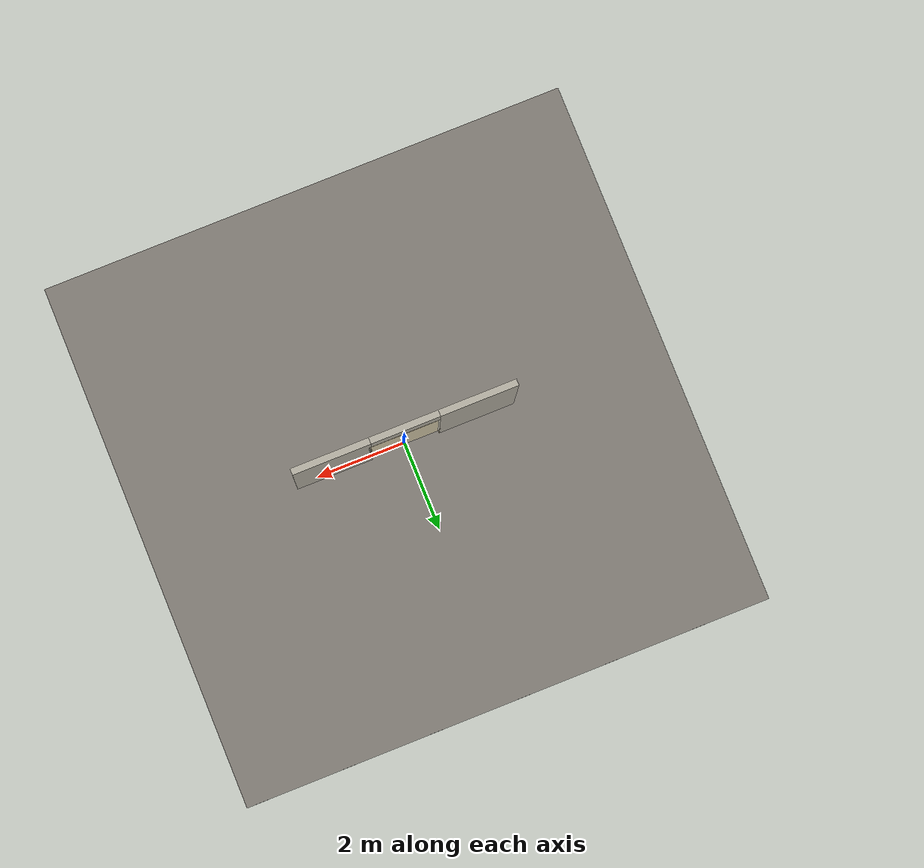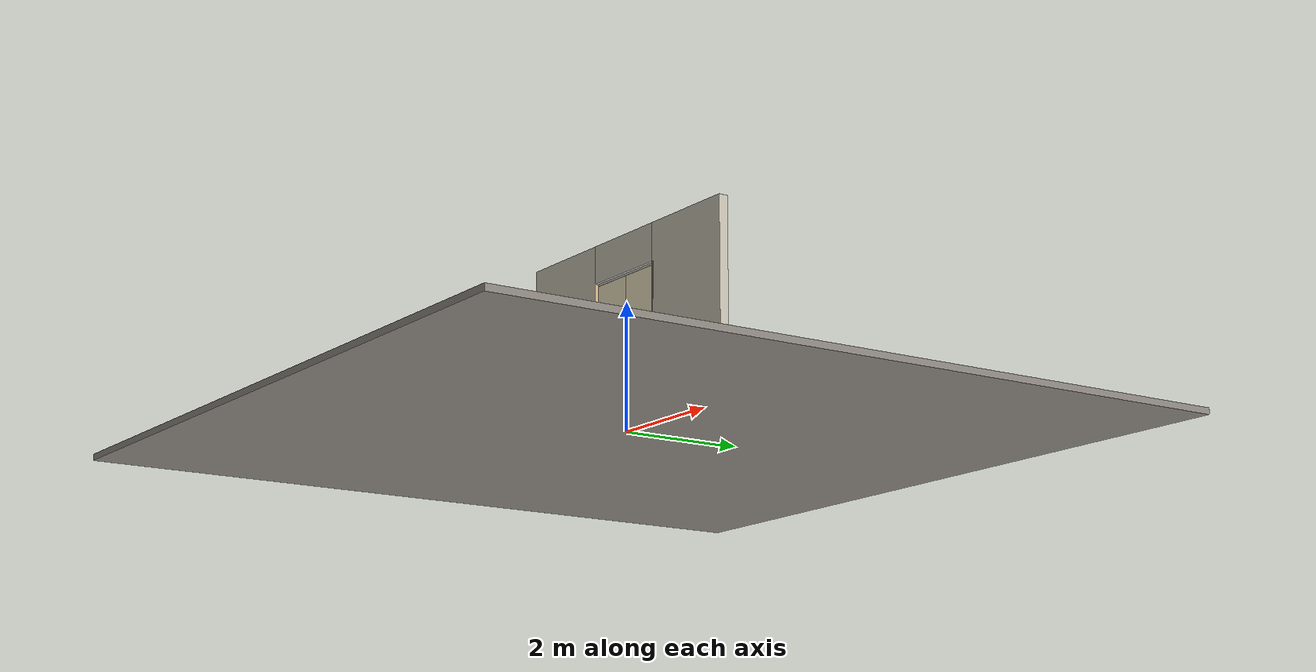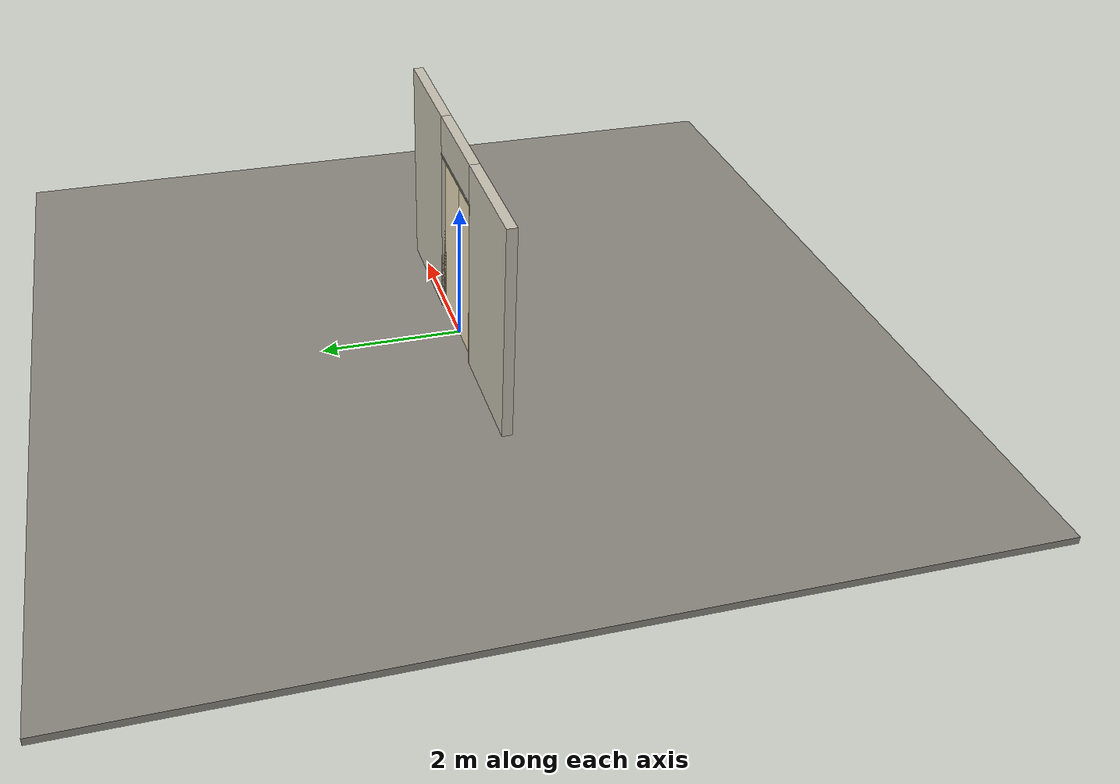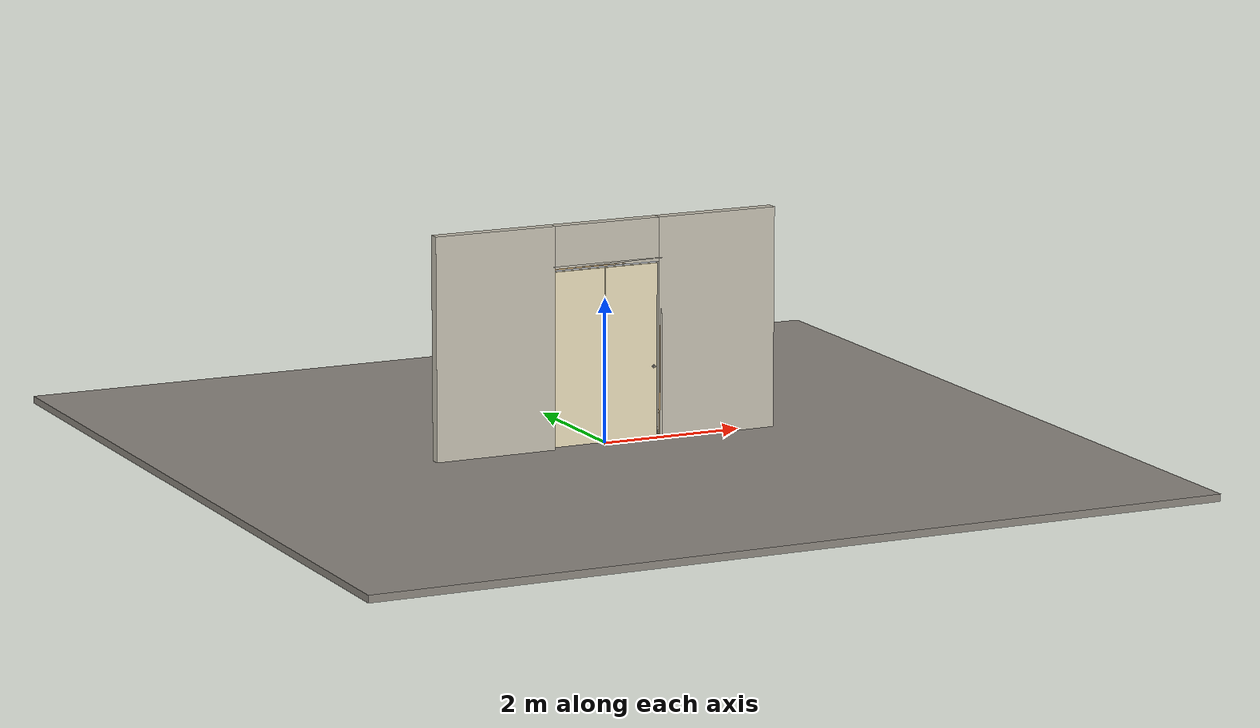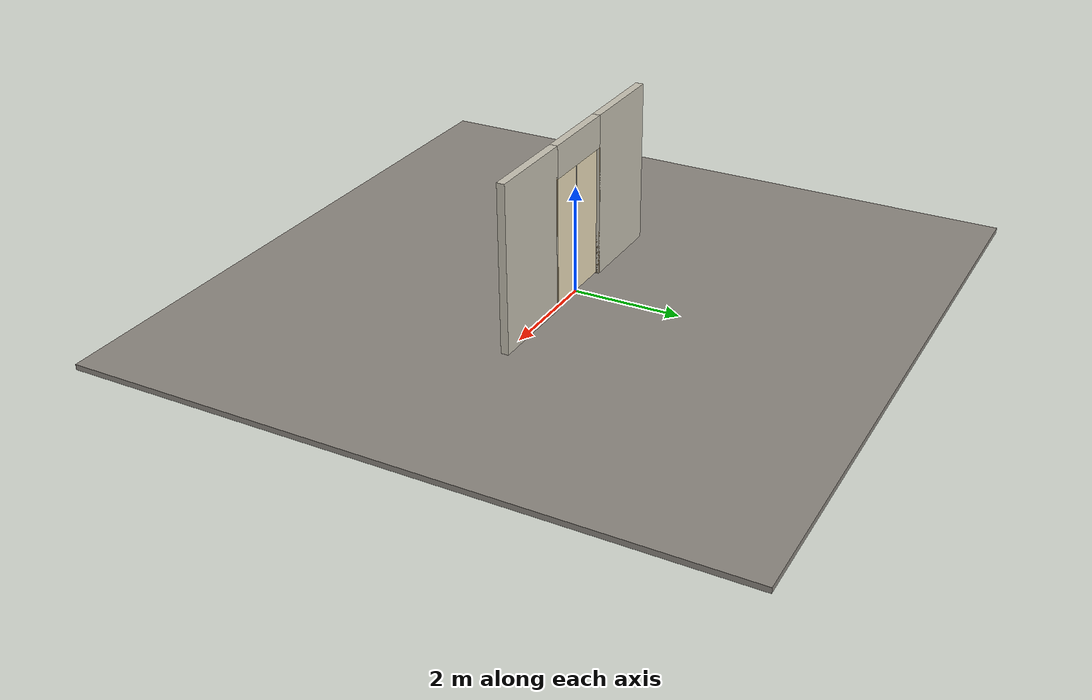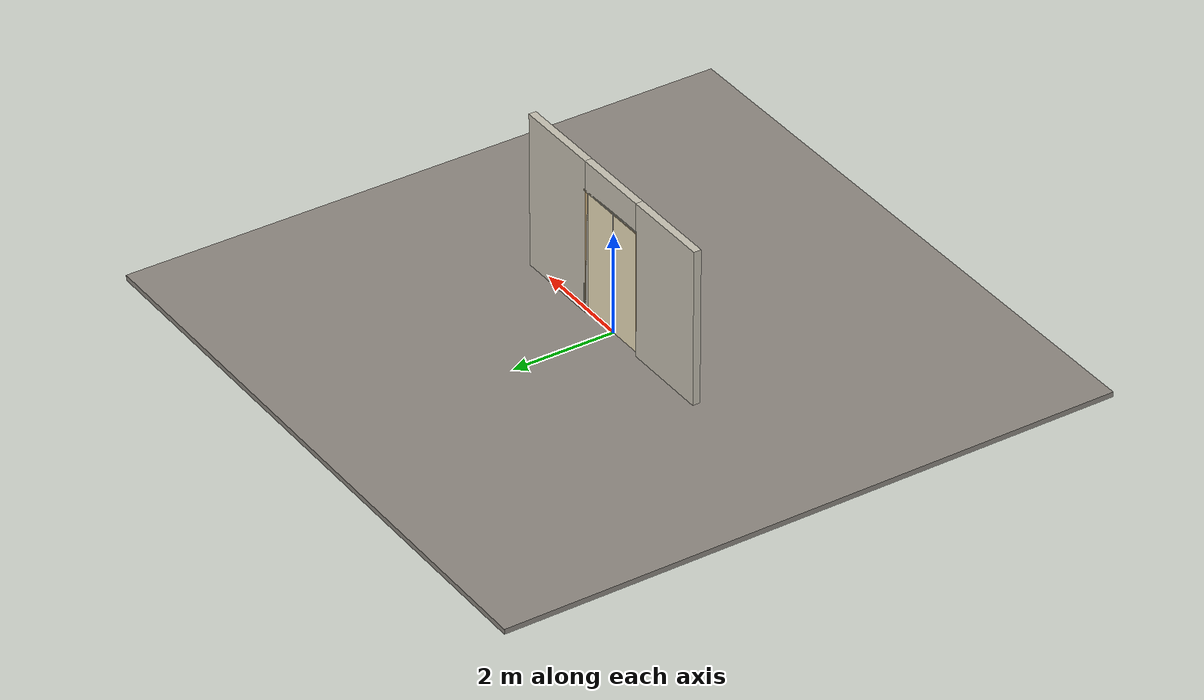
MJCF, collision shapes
<?xml version="1.0" ?>
<mujoco model="db0004_bifold_simple">
  <compiler angle="radian" meshdir="../../hardware" texturedir="../../textures" autolimits="true" inertiafromgeom="false"/>
  <option timestep="0.002" integrator="implicitfast" cone="elliptic" impratio="10" noslip_iterations="3">
    <flag multiccd="enable"/>
  </option>
  <size memory="16M"/>
  <default>
    <geom condim="4" solref="0.005 1" solimp="0.95 0.99 0.001"/>
    <joint solreflimit="0.005 1" solimplimit="0.95 0.99 0.001"/>
    <tendon solreflimit="0.005 1"/>
    <equality solref="0.002 1"/>
  </default>
  <visual>
    <headlight ambient="0.4 0.4 0.4" diffuse="0.7 0.7 0.7" specular="0.2 0.2 0.2"/>
    <quality shadowsize="4096"/>
    <map znear="0.01" zfar="60"/>
  </visual>
  <asset>
    <mesh name="knob_13f7a2a65f" file="knob_13f7a2a65f.obj"/>
    <material name="mat_floor" rgba="0.55 0.53 0.5 1" specular="0.2" shininess="0.15" reflectance="0"/>
    <material name="mat_wall" rgba="0.78 0.76 0.7 1" specular="0.2" shininess="0.1" reflectance="0"/>
    <material name="mat_frame" rgba="0.82 0.7 0.5 1" specular="0.2" shininess="0.45" reflectance="0"/>
    <material name="mat_track" rgba="0.8 0.81 0.83 1" specular="0.8" shininess="0.6" reflectance="0.4"/>
    <material name="mat_hinge" rgba="0.65 0.66 0.68 1" specular="0.74" shininess="0.5" reflectance="0.36"/>
    <material name="mat_panel_0_0" rgba="0.93 0.88 0.74 1" specular="0.2" shininess="0.52" reflectance="0"/>
    <material name="mat_panel_0_0_louver" rgba="0.79 0.748 0.629 1" specular="0.2" shininess="0.4" reflectance="0"/>
    <material name="mat_panel_0_1" rgba="0.93 0.88 0.74 1" specular="0.2" shininess="0.52" reflectance="0"/>
    <material name="mat_panel_0_1_louver" rgba="0.79 0.748 0.629 1" specular="0.2" shininess="0.4" reflectance="0"/>
    <material name="mat_op_nickel_satin" rgba="0.72 0.7 0.66 1" specular="0.8" shininess="0.65" reflectance="0.4"/>
    <texture name="skybox" type="skybox" builtin="gradient" rgb1="0.6 0.7 0.85" rgb2="0.9 0.92 0.95" width="256" height="256"/>
  </asset>
  <worldbody>
    <light name="sun" pos="1.5 -2.5 4" dir="-0.3 0.5 -0.8" directional="true" diffuse="0.8 0.8 0.8" specular="0.3 0.3 0.3" castshadow="true"/>
    <light name="fill" pos="-1.5 2.5 3" dir="0.3 -0.5 -0.7" directional="true" diffuse="0.35 0.35 0.4" castshadow="false"/>
    <camera name="robot_view" pos="0 -2.926563 2.046937" xyaxes="1 0 0 0 0.26963 0.962964" fovy="52"/>
    <camera name="far_view" pos="0 2.926563 2.046937" xyaxes="-1 0 0 0 -0.26963 0.962964" fovy="52"/>
    <camera name="iso" pos="2.224187 -2.458313 2.515188" xyaxes="0.741536 0.670913 0 -0.242917 0.268487 0.932151" fovy="46"/>
    <camera name="detail_handle" pos="0.8935 -0.8475 1.28" xyaxes="0.97561 0.219512 0 -0.070934 0.315262 0.94635" fovy="38"/>
    <geom name="floor" type="box" size="6 6 0.05" pos="0 0 -0.05" material="mat_floor" group="0" contype="1" conaffinity="1" friction="0.8 0.005 0.0001" density="2400"/>
    <geom name="wall_left" type="box" size="0.86525 0.0725 1.5275" pos="-1.63475 0 1.5275" material="mat_wall" group="0" contype="1" conaffinity="1" friction="0.6 0.005 0.0001" density="800"/>
    <geom name="wall_right" type="box" size="0.86525 0.0725 1.5275" pos="1.63475 0 1.5275" material="mat_wall" group="0" contype="1" conaffinity="1" friction="0.6 0.005 0.0001" density="800"/>
    <geom name="wall_header" type="box" size="0.7695 0.0725 0.3" pos="0 0 2.755" material="mat_wall" group="0" contype="1" conaffinity="1" friction="0.6 0.005 0.0001" density="800"/>
    <geom name="jamb_hinge" type="box" size="0.0095 0.0725 1.2275" pos="-0.779 0 1.2275" material="mat_frame" group="0" contype="1" conaffinity="1" friction="0.6 0.005 0.0001" density="400"/>
    <geom name="jamb_strike" type="box" size="0.0095 0.0725 1.2275" pos="0.779 0 1.2275" material="mat_frame" group="0" contype="1" conaffinity="1" friction="0.6 0.005 0.0001" density="400"/>
    <geom name="stud_strike" type="box" size="0.015 0.0725 1.2275" pos="0.8035 0 1.2275" material="mat_wall" group="0" contype="1" conaffinity="1" friction="0.6 0.005 0.0001" density="500"/>
    <geom name="jamb_head" type="box" size="0.8035 0.0725 0.0095" pos="0.015 0 2.4645" material="mat_frame" group="0" contype="1" conaffinity="1" friction="0.6 0.005 0.0001" density="400"/>
    <geom name="head_stud" type="box" size="0.8035 0.0725 0.015" pos="0.015 0 2.489" material="mat_wall" group="0" contype="1" conaffinity="1" friction="0.6 0.005 0.0001" density="500"/>
    <geom name="fold_track" type="box" size="0.7695 0.02 0.015" pos="0 0 2.44" material="mat_track" group="1" contype="0" conaffinity="0" density="2700"/>
    <site name="approach_point" pos="0 -1.5 0" quat="1 0 0 0" size="0.05" rgba="0.2 0.9 0.2 0.5" group="4"/>
    <site name="goal_point" pos="0 1.5 0" quat="1 0 0 0" size="0.05" rgba="0.2 0.9 0.2 0.5" group="4"/>
    <site name="door_plane_center" pos="0 0 1.2275" quat="1 0 0 0" size="0.02" rgba="0.2 0.9 0.2 0.5" group="4"/>
    <body name="panel_0_0" pos="-0.7695 0 0">
      <inertial pos="0.383534 0 1.222819" mass="14.037347" quat="0.500564 0.500564 0.499435 -0.499435" diaginertia="0.66413032 6.770961617 7.432231654"/>
      <joint name="panel_0_0_hinge" type="hinge" axis="0 0 -1" pos="0.035 0 0" limited="true" range="0 1.48353" damping="0.884535" frictionloss="2.611303" armature="0.02"/>
      <geom name="panel_0_0_slab" type="box" size="0.375645 0.0175 1.2" pos="0.384355 0 1.22" material="mat_panel_0_0" group="0" contype="1" conaffinity="1" friction="0.35 0.005 0.0001" density="1"/>
      <geom name="panel_0_0_pivot_pin" type="cylinder" size="0.008 0.0105" pos="0.035 0 2.4205" material="mat_hinge" group="1" contype="0" conaffinity="0" density="7850"/>
      <body name="panel_0_1" pos="0.762 0 0">
        <inertial pos="0.093608 0.011078 1.196877" mass="14.416173" quat="0.492715 0.526008 0.472444 -0.507291" diaginertia="0.789701608 6.169489251 6.958043344"/>
        <joint name="panel_0_1_hinge" type="hinge" axis="0 0 -1" pos="0 0.0175 0" limited="true" range="-3.141593 0" damping="0.2" frictionloss="0.1" armature="0.005"/>
        <geom name="panel_0_1_slab" type="box" size="0.3845 0.0175 1.2" pos="0.3865 0 1.22" material="mat_panel_0_1" group="0" contype="1" conaffinity="1" friction="0.35 0.005 0.0001" density="1"/>
        <geom name="panel_0_1_knuckle" type="cylinder" size="0.0045 1.19" pos="0 0.0175 1.22" material="mat_hinge" group="1" contype="0" conaffinity="0" density="7850"/>
        <geom name="panel_0_1_knob" type="mesh" mesh="knob_13f7a2a65f" pos="0.721 -0.0175 1" quat="0.707107 0.707107 0 0" material="mat_op_nickel_satin" group="1" contype="0" conaffinity="0" density="3000"/>
        <geom name="panel_0_1_knob_col" type="sphere" size="0.016" pos="0.721 -0.0475 1" material="mat_op_nickel_satin" group="0" contype="1" conaffinity="1" friction="0.6 0.005 0.0001" density="3000"/>
        <geom name="panel_0_1_knob_rose" type="cylinder" size="0.022 0.005" pos="0.721 -0.0225 1" quat="0.707107 -0.707107 0 0" material="mat_op_nickel_satin" group="1" contype="0" conaffinity="0" density="3000"/>
        <site name="panel_0_1_grip" pos="0.721 -0.0475 1" quat="1 0 0 0" size="0.012" rgba="0.2 0.9 0.2 0.5" group="4"/>
      </body>
    </body>
  </worldbody>
  <equality>
    <joint name="panel_0_1_couple" joint1="panel_0_1_hinge" joint2="panel_0_0_hinge" polycoef="0 -2 0 0 0" active="true"/>
  </equality>
  <sensor>
    <jointpos name="panel_0_0_hinge_pos" joint="panel_0_0_hinge"/>
    <jointvel name="panel_0_0_hinge_vel" joint="panel_0_0_hinge"/>
    <jointpos name="panel_0_1_hinge_pos" joint="panel_0_1_hinge"/>
    <jointvel name="panel_0_1_hinge_vel" joint="panel_0_1_hinge"/>
  </sensor>
</mujoco>
